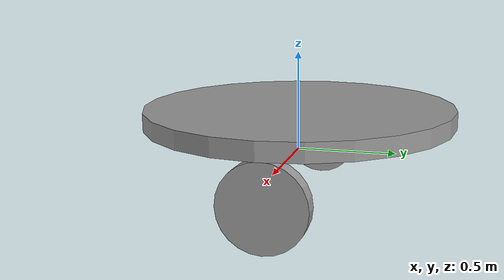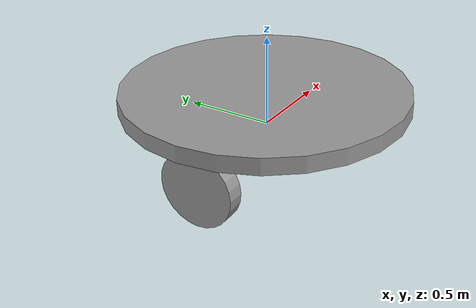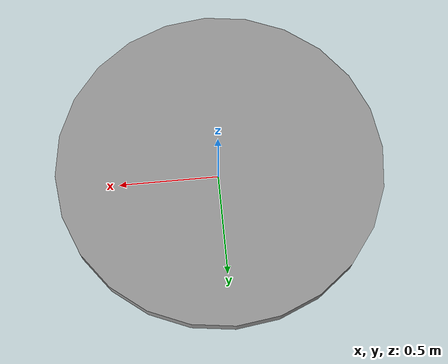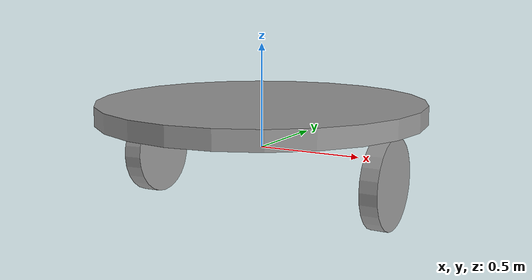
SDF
<?xml version='1.0'?>
<sdf version='1.5'>
  <model name='bfl_2'>
    <link name='link_1'>
      <inertial>
        <mass>0.225868</mass>
        <inertia>
          <ixx>0.0354084</ixx>
          <ixy>0</ixy>
          <ixz>0</ixz>
          <iyy>0.0354084</iyy>
          <iyz>0</iyz>
          <izz>0.0705088</izz>
        </inertia>
        <pose>0 0 0 0 -0 0</pose>
      </inertial>
      <pose>-0.007011 0.005375 0.182343 0 -0 0</pose>
      <visual name='visual'>
        <pose>0 0 0 0 -0 0</pose>
        <geometry>
          <cylinder>
            <radius>0.79015</radius>
            <length>0.0904415</length>
          </cylinder>
        </geometry>
        <material>
          <lighting>1</lighting>
          <script>
            <uri>file://media/materials/scripts/gazebo.material</uri>
            <name>Gazebo/Grey</name>
          </script>
          <shader type='pixel'/>
          <emissive>0 0 0 1</emissive>
        </material>
        <transparency>0</transparency>
        <cast_shadows>1</cast_shadows>
      </visual>
      <collision name='collision'>
        <laser_retro>0</laser_retro>
        <max_contacts>10</max_contacts>
        <pose>0 0 0 0 -0 0</pose>
        <geometry>
          <cylinder>
            <radius>0.79015</radius>
            <length>0.090441</length>
          </cylinder>
        </geometry>
        <surface>
          <friction>
            <ode>
              <mu>1</mu>
              <mu2>1</mu2>
              <fdir1>0 0 0</fdir1>
              <slip1>0</slip1>
              <slip2>0</slip2>
            </ode>
            <torsional>
              <coefficient>1</coefficient>
              <patch_radius>0</patch_radius>
              <surface_radius>0</surface_radius>
              <use_patch_radius>1</use_patch_radius>
              <ode>
                <slip>0</slip>
              </ode>
            </torsional>
          </friction>
          <bounce>
            <restitution_coefficient>0</restitution_coefficient>
            <threshold>1e+06</threshold>
          </bounce>
          <contact>
            <collide_without_contact>0</collide_without_contact>
            <collide_without_contact_bitmask>1</collide_without_contact_bitmask>
            <collide_bitmask>1</collide_bitmask>
            <ode>
              <soft_cfm>0</soft_cfm>
              <soft_erp>0.2</soft_erp>
              <kp>1e+13</kp>
              <kd>1</kd>
              <max_vel>0.01</max_vel>
              <min_depth>0</min_depth>
            </ode>
            <bullet>
              <split_impulse>1</split_impulse>
              <split_impulse_penetration_threshold>-0.01</split_impulse_penetration_threshold>
              <soft_cfm>0</soft_cfm>
              <soft_erp>0.2</soft_erp>
              <kp>1e+13</kp>
              <kd>1</kd>
            </bullet>
          </contact>
        </surface>
      </collision>
    </link>
    <link name='link_2'>
      <inertial>
        <mass>0.0152714</mass>
        <inertia>
          <ixx>0.000183382</ixx>
          <ixy>0</ixy>
          <ixz>0</ixz>
          <iyy>0.000183382</iyy>
          <iyz>0</iyz>
          <izz>0.000348998</izz>
        </inertia>
        <pose>0 0 0 0 -0 0</pose>
      </inertial>
      <pose>0.634094 -0.004084 -0.104202 0 -1.56933 0</pose>
      <visual name='visual'>
        <pose>0 0 0 0 -0 0</pose>
        <geometry>
          <cylinder>
            <radius>0.21379</radius>
            <length>0.0835446</length>
          </cylinder>
        </geometry>
        <material>
          <lighting>1</lighting>
          <script>
            <uri>file://media/materials/scripts/gazebo.material</uri>
            <name>Gazebo/Grey</name>
          </script>
          <shader type='pixel'/>
          <emissive>0 0 0 1</emissive>
        </material>
        <transparency>0</transparency>
        <cast_shadows>1</cast_shadows>
      </visual>
      <collision name='collision'>
        <laser_retro>0</laser_retro>
        <max_contacts>10</max_contacts>
        <pose>0 0 0 0 -0 0</pose>
        <geometry>
          <cylinder>
            <radius>0.21379</radius>
            <length>0.083545</length>
          </cylinder>
        </geometry>
        <surface>
          <friction>
            <ode>
              <mu>1</mu>
              <mu2>1</mu2>
              <fdir1>0 0 0</fdir1>
              <slip1>0</slip1>
              <slip2>0</slip2>
            </ode>
            <torsional>
              <coefficient>1</coefficient>
              <patch_radius>0</patch_radius>
              <surface_radius>0</surface_radius>
              <use_patch_radius>1</use_patch_radius>
              <ode>
                <slip>0</slip>
              </ode>
            </torsional>
          </friction>
          <bounce>
            <restitution_coefficient>0</restitution_coefficient>
            <threshold>1e+06</threshold>
          </bounce>
          <contact>
            <collide_without_contact>0</collide_without_contact>
            <collide_without_contact_bitmask>1</collide_without_contact_bitmask>
            <collide_bitmask>1</collide_bitmask>
            <ode>
              <soft_cfm>0</soft_cfm>
              <soft_erp>0.2</soft_erp>
              <kp>1e+13</kp>
              <kd>1</kd>
              <max_vel>0.01</max_vel>
              <min_depth>0</min_depth>
            </ode>
            <bullet>
              <split_impulse>1</split_impulse>
              <split_impulse_penetration_threshold>-0.01</split_impulse_penetration_threshold>
              <soft_cfm>0</soft_cfm>
              <soft_erp>0.2</soft_erp>
              <kp>1e+13</kp>
              <kd>1</kd>
            </bullet>
          </contact>
        </surface>
      </collision>
    </link>
    <link name='link_3'>
      <inertial>
        <mass>0.0159258</mass>
        <inertia>
          <ixx>0.000182628</ixx>
          <ixy>0</ixy>
          <ixz>0</ixz>
          <iyy>0.000182628</iyy>
          <iyz>0</iyz>
          <izz>0.00034253</izz>
        </inertia>
        <pose>0 0 0 0 -0 0</pose>
      </inertial>
      <pose>-0.627083 -0.001291 -0.07814 0 1.54813 0</pose>
      <visual name='visual'>
        <pose>0 0 0 0 -0 0</pose>
        <geometry>
          <cylinder>
            <radius>0.207402</radius>
            <length>0.0925299</length>
          </cylinder>
        </geometry>
        <material>
          <lighting>1</lighting>
          <script>
            <uri>file://media/materials/scripts/gazebo.material</uri>
            <name>Gazebo/Grey</name>
          </script>
          <shader type='pixel'/>
          <emissive>0 0 0 1</emissive>
        </material>
        <transparency>0</transparency>
        <cast_shadows>1</cast_shadows>
      </visual>
      <collision name='collision'>
        <laser_retro>0</laser_retro>
        <max_contacts>10</max_contacts>
        <pose>0 0 0 0 -0 0</pose>
        <geometry>
          <cylinder>
            <radius>0.207402</radius>
            <length>0.09253</length>
          </cylinder>
        </geometry>
        <surface>
          <friction>
            <ode>
              <mu>1</mu>
              <mu2>1</mu2>
              <fdir1>0 0 0</fdir1>
              <slip1>0</slip1>
              <slip2>0</slip2>
            </ode>
            <torsional>
              <coefficient>1</coefficient>
              <patch_radius>0</patch_radius>
              <surface_radius>0</surface_radius>
              <use_patch_radius>1</use_patch_radius>
              <ode>
                <slip>0</slip>
              </ode>
            </torsional>
          </friction>
          <bounce>
            <restitution_coefficient>0</restitution_coefficient>
            <threshold>1e+06</threshold>
          </bounce>
          <contact>
            <collide_without_contact>0</collide_without_contact>
            <collide_without_contact_bitmask>1</collide_without_contact_bitmask>
            <collide_bitmask>1</collide_bitmask>
            <ode>
              <soft_cfm>0</soft_cfm>
              <soft_erp>0.2</soft_erp>
              <kp>1e+13</kp>
              <kd>1</kd>
              <max_vel>0.01</max_vel>
              <min_depth>0</min_depth>
            </ode>
            <bullet>
              <split_impulse>1</split_impulse>
              <split_impulse_penetration_threshold>-0.01</split_impulse_penetration_threshold>
              <soft_cfm>0</soft_cfm>
              <soft_erp>0.2</soft_erp>
              <kp>1e+13</kp>
              <kd>1</kd>
            </bullet>
          </contact>
        </surface>
      </collision>
    </link>
    <joint name='link_1_JOINT_0' type='revolute'>
      <parent>link_1</parent>
      <child>link_2</child>
      <pose>0 0 0 0 -0 0</pose>
      <axis>
        <xyz>0 0 1</xyz>
        <limit>
          <lower>-1.79769e+308</lower>
          <upper>1.79769e+308</upper>
          <effort>-1</effort>
          <velocity>-1</velocity>
        </limit>
        <dynamics>
          <spring_reference>0</spring_reference>
          <spring_stiffness>0</spring_stiffness>
          <damping>0</damping>
        </dynamics>
      </axis>
      <physics>
        <ode>
          <limit>
            <cfm>0</cfm>
            <erp>0.2</erp>
          </limit>
          <suspension>
            <cfm>0</cfm>
            <erp>0.2</erp>
          </suspension>
        </ode>
      </physics>
    </joint>
    <joint name='link_1_JOINT_1' type='revolute'>
      <parent>link_1</parent>
      <child>link_3</child>
      <pose>0 0 0 0 -0 0</pose>
      <axis>
        <xyz>0 0 1</xyz>
        <limit>
          <lower>-1.79769e+308</lower>
          <upper>1.79769e+308</upper>
          <effort>-1</effort>
          <velocity>-1</velocity>
        </limit>
        <dynamics>
          <spring_reference>0</spring_reference>
          <spring_stiffness>0</spring_stiffness>
          <damping>0</damping>
        </dynamics>
      </axis>
      <physics>
        <ode>
          <limit>
            <cfm>0</cfm>
            <erp>0.2</erp>
          </limit>
          <suspension>
            <cfm>0</cfm>
            <erp>0.2</erp>
          </suspension>
        </ode>
      </physics>
    </joint>
    <static>0</static>
    <allow_auto_disable>1</allow_auto_disable>
  </model>
</sdf>
